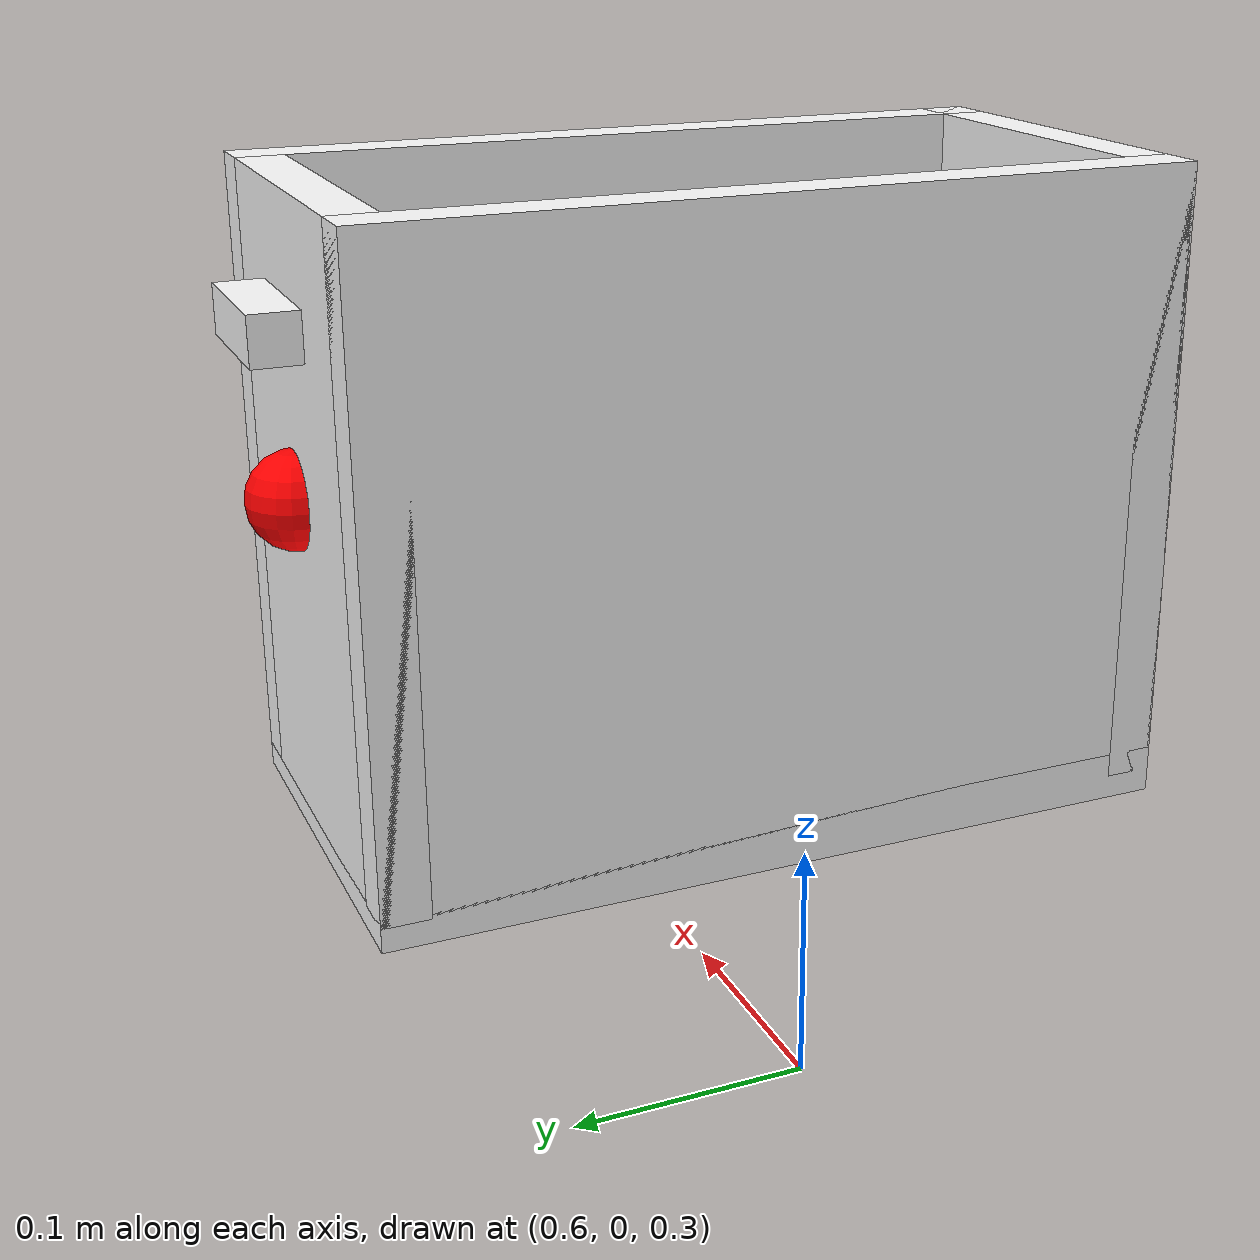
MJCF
<mujoco model="bread_box">
  <compiler angle="radian" />

  <asset>
    <material name="white_wood" rgba="1 1 1 1" />
  </asset>

  <worldbody>
   <body name="bread_box" pos="0.7 0.0 0.4">
      <inertial mass="2.0" pos="0.0 0 -0.2" diaginertia="0.0334 0.02167 0.04167"/>

      <freejoint name="bread_box_root" />
      <site name="bread_box_root" pos="0 0 0" size="0.05" type="sphere" rgba="0.5 0.5 0.5 1"/>
      <site name="left_hand_contact"  pos="0  0.17 0.14" size="0.02" type="sphere" rgba="1 0 0 1"/>
      <site name="right_hand_contact" pos="0 -0.17 0.14" size="0.02" type="sphere" rgba="1 0 0 1"/>

      <geom name="bottom" type="box" size="0.09 0.17 0.01" pos="0 0 0" material="white_wood"/>

      <geom type="box" name="side1" pos="-0.08   0    0.13" material="white_wood" size="0.01 0.17 0.13"/>
      <geom type="box" name="side2" pos=" 0.08   0    0.13" material="white_wood" size="0.01 0.17 0.13"/>
      <geom type="box" name="side3" pos="0       0.16 0.13" material="white_wood" size="0.09 0.01 0.13"/>
      <geom type="box" name="side4" pos="0      -0.16 0.13" material="white_wood" size="0.09 0.01 0.13"/>

      <geom type="box" name="handle_left" pos="0  0.17 0.21" material="white_wood" size="0.03 0.02 0.01"/>
      <geom type="box" name="handle_right" pos="0 -0.17 0.21" material="white_wood" size="0.03 0.02 0.01"/>
    </body>
  </worldbody>

  <sensor>
    <framepos name="bread_box_pos" objtype="xbody" objname="bread_box"/>
    <framequat name="bread_box_quat" objtype="xbody" objname="bread_box"/>
  </sensor>
</mujoco>
